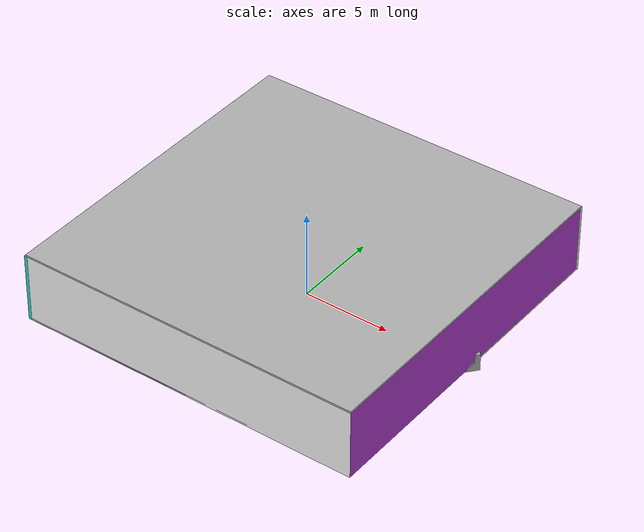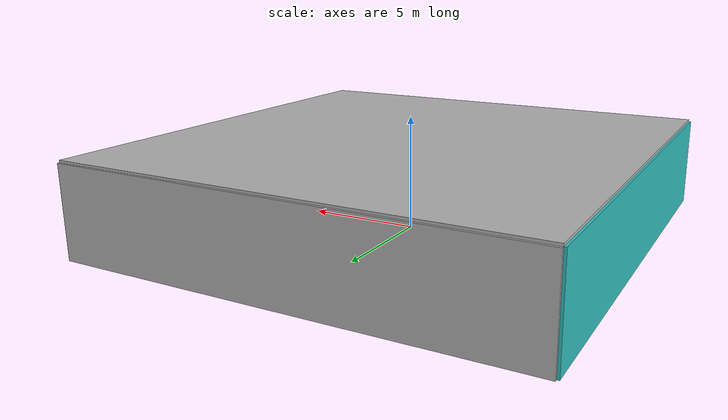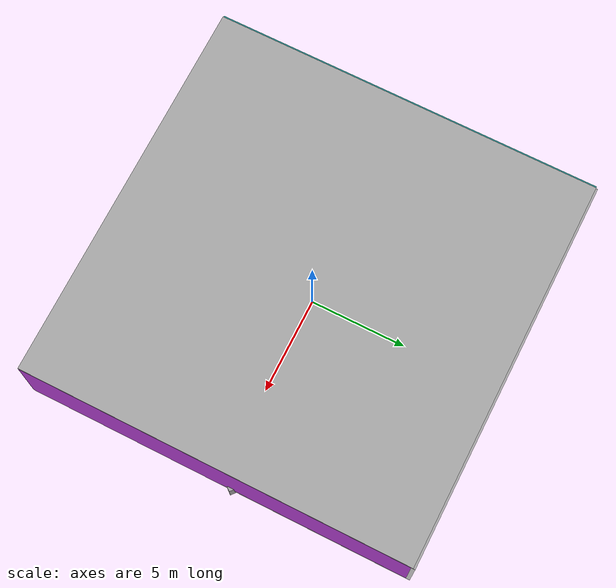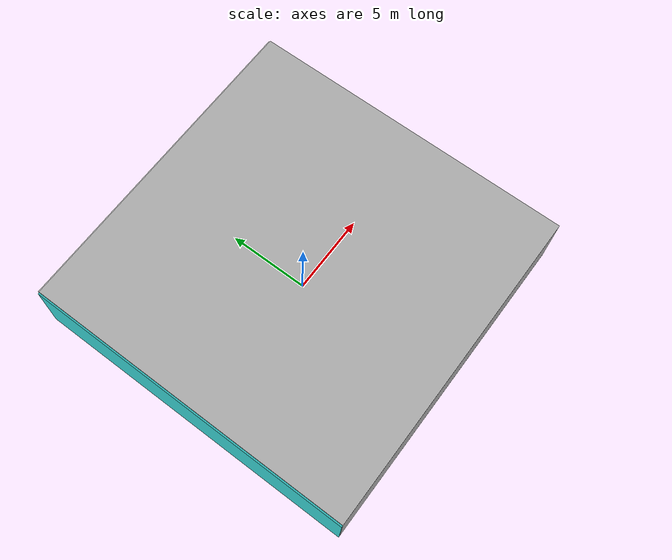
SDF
<sdf version="1.4">
 <world name="default">
  <physics type="ode">
   <max_step_size>0.001</max_step_size>
   <real_time_factor>1</real_time_factor>
   <real_time_update_rate>1000</real_time_update_rate>
   <gravity>0 0 -9.8</gravity>
  </physics>
  <scene><ambient>0.4 0.4 0.4 1</ambient><background>0.7 0.7 0.7 1</background><shadows>1</shadows></scene>
  <model name="Surrounding">
   <static>1</static>
   <link name="Ceiling">
    <collision name="Ceiling_Collision"><geometry><box><size>20 20 0.1</size></box></geometry></collision>
    <visual name="Ceiling_Visual">
     <geometry><box><size>20 20 0.1</size></box></geometry>
     <material>
      <script><uri>file://media/materials/scripts/gazebo.material</uri><name>Gazebo/LightOn</name></script>
     </material>
    </visual>
    <pose>0 0 4.05 0 0 0</pose>
   </link>
   <link name="Wall_South">
    <collision name="Wall_South_Collision">
     <geometry><box><size>20 0 4</size></box></geometry>
     <pose>0 0 2 0 -0 0</pose>
    </collision>
    <visual name="Wall_South_Visual">
     <pose>0 0 2 0 -0 0</pose>
     <geometry><box><size>20 0 4</size></box></geometry>
     <material>
      <script><uri>file://media/materials/scripts/gazebo.material</uri><name>Gazebo/WhiteGlow</name></script>
     </material>
    </visual>
    <velocity_decay><linear>0</linear><angular>0</angular></velocity_decay>
    <pose>0 -10 0 0 -0 0</pose>
   </link>
   <link name="Wall_East">
    <collision name="Wall_21_Collision">
     <geometry><box><size>20 0 4</size></box></geometry>
     <pose>0 0 2 0 -0 0</pose>
    </collision>
    <visual name="Wall_21_Visual">
     <pose>0 0 2 0 -0 0</pose>
     <geometry><box><size>20 0 4</size></box></geometry>
     <material>
      <script><uri>file://media/materials/scripts/gazebo.material</uri><name>Gazebo/PurpleGlow</name></script>
     </material>
    </visual>
    <velocity_decay><linear>0</linear><angular>0</angular></velocity_decay>
    <pose>10 0 0 0 -0 1.5708</pose>
   </link>
   <link name="Wall_North">
    <collision name="Wall_22_Collision">
     <geometry><box><size>20 0.2 4</size></box></geometry>
     <pose>0 0 2 0 -0 0</pose>
    </collision>
    <visual name="Wall_22_Visual">
     <pose>0 0 2 0 -0 0</pose>
     <geometry><box><size>20 0.2 4</size></box></geometry>
     <material>
      <script><uri>file://media/materials/scripts/gazebo.material</uri><name>Gazebo/CloudySky</name></script>
     </material>
    </visual>
    <velocity_decay><linear>0</linear><angular>0</angular></velocity_decay>
    <pose>0 10 0 0 -0 0</pose>
   </link>
   <link name="Wall_West">
    <collision name="Wall_23_Collision">
     <geometry><box><size>20 0.2 4</size></box></geometry>
     <pose>0 0 2 0 -0 0</pose>
    </collision>
    <visual name="Wall_23_Visual">
     <pose>0 0 2 0 -0 0</pose>
     <geometry><box><size>20 0.2 4</size></box></geometry>
     <material>
      <script>
       <uri>file://media/materials/scripts/gazebo.material</uri>
       <name>Gazebo/TurquoiseGlowOutline</name>
      </script>
     </material>
    </visual>
    <velocity_decay><linear>0</linear><angular>0</angular></velocity_decay>
    <pose>-10 0 0 0 0 -1.5708</pose>
   </link>
   <link name="Ground_link">
    <collision name="collision">
     <pose>0 0 .05 0 -0 0</pose>
     <geometry><box><size>20 20 0.1</size></box></geometry>
    </collision>
    <visual name="visual">
     <pose>0 0 .05 0 -0 0</pose>
     <geometry><box><size>20 20 0.1</size></box></geometry>
     <material>
      <script><uri>file://media/materials/scripts/gazebo.material</uri><name>Gazebo/CloudySky</name></script>
     </material>
    </visual>
   </link>
   <static>1</static>
  </model>
  <spherical_coordinates>
   <surface_model>EARTH_WGS84</surface_model>
   <latitude_deg>0</latitude_deg>
   <longitude_deg>0</longitude_deg>
   <elevation>0</elevation>
   <heading_deg>0</heading_deg>
  </spherical_coordinates>
  <light name="lightball_0" type="diffuse">
   <diffuse>0.8 0.8 0.8 1</diffuse>
   <specular>0.2 0.2 0.2 1</specular>
   <attenuation>
    <range>100</range>
    <constant>0.7</constant>
    <linear>0.01</linear>
    <quadratic>0.001</quadratic>
   </attenuation>
   <direction>-0.5 0.1 -0.9</direction>
   <pose>7.56634077778 -9.53930154002 1.495026603 0 0 0</pose>
  </light>
  <light name="lightball_1" type="diffuse">
   <diffuse>0.8 0.8 0.8 1</diffuse>
   <specular>0.2 0.2 0.2 1</specular>
   <attenuation>
    <range>100</range>
    <constant>0.7</constant>
    <linear>0.01</linear>
    <quadratic>0.001</quadratic>
   </attenuation>
   <direction>-0.5 0.1 -0.9</direction>
   <pose>-0.631346756569 -4.55878784354 1.05245372138 0 0 0</pose>
  </light>
  <light name="lightball_2" type="diffuse">
   <diffuse>0.8 0.8 0.8 1</diffuse>
   <specular>0.2 0.2 0.2 1</specular>
   <attenuation>
    <range>100</range>
    <constant>0.7</constant>
    <linear>0.01</linear>
    <quadratic>0.001</quadratic>
   </attenuation>
   <direction>-0.5 0.1 -0.9</direction>
   <pose>4.78251070517 9.08869459844 2.69732444839 0 0 0</pose>
  </light>
  <light name="lightball_3" type="diffuse">
   <diffuse>0.8 0.8 0.8 1</diffuse>
   <specular>0.2 0.2 0.2 1</specular>
   <attenuation>
    <range>100</range>
    <constant>0.7</constant>
    <linear>0.01</linear>
    <quadratic>0.001</quadratic>
   </attenuation>
   <direction>-0.5 0.1 -0.9</direction>
   <pose>-9.61192702446 4.28972593213 3.39270167768 0 0 0</pose>
  </light>
  <light name="lightball_4" type="diffuse">
   <diffuse>0.8 0.8 0.8 1</diffuse>
   <specular>0.2 0.2 0.2 1</specular>
   <attenuation>
    <range>100</range>
    <constant>0.7</constant>
    <linear>0.01</linear>
    <quadratic>0.001</quadratic>
   </attenuation>
   <direction>-0.5 0.1 -0.9</direction>
   <pose>-7.20627061551 -6.60308941693 1.60108269967 0 0 0</pose>
  </light>
  <light name="lightball_5" type="diffuse">
   <diffuse>0.8 0.8 0.8 1</diffuse>
   <specular>0.2 0.2 0.2 1</specular>
   <attenuation>
    <range>100</range>
    <constant>0.7</constant>
    <linear>0.01</linear>
    <quadratic>0.001</quadratic>
   </attenuation>
   <direction>-0.5 0.1 -0.9</direction>
   <pose>-9.88843000921 0.479265680897 2.61928680781 0 0 0</pose>
  </light>
  <light name="lightball_6" type="diffuse">
   <diffuse>0.8 0.8 0.8 1</diffuse>
   <specular>0.2 0.2 0.2 1</specular>
   <attenuation>
    <range>100</range>
    <constant>0.7</constant>
    <linear>0.01</linear>
    <quadratic>0.001</quadratic>
   </attenuation>
   <direction>-0.5 0.1 -0.9</direction>
   <pose>8.17457955188 -8.67518167937 3.40176478838 0 0 0</pose>
  </light>
  <light name="lightball_7" type="diffuse">
   <diffuse>0.8 0.8 0.8 1</diffuse>
   <specular>0.2 0.2 0.2 1</specular>
   <attenuation>
    <range>100</range>
    <constant>0.7</constant>
    <linear>0.01</linear>
    <quadratic>0.001</quadratic>
   </attenuation>
   <direction>-0.5 0.1 -0.9</direction>
   <pose>1.91066519623 9.81128910496 0.538438005136 0 0 0</pose>
  </light>
  <light name="lightball_8" type="diffuse">
   <diffuse>0.8 0.8 0.8 1</diffuse>
   <specular>0.2 0.2 0.2 1</specular>
   <attenuation>
    <range>100</range>
    <constant>0.7</constant>
    <linear>0.01</linear>
    <quadratic>0.001</quadratic>
   </attenuation>
   <direction>-0.5 0.1 -0.9</direction>
   <pose>0.26358623116 2.82653111849 0.917000272317 0 0 0</pose>
  </light>
  <light name="lightball_9" type="diffuse">
   <diffuse>0.8 0.8 0.8 1</diffuse>
   <specular>0.2 0.2 0.2 1</specular>
   <attenuation>
    <range>100</range>
    <constant>0.7</constant>
    <linear>0.01</linear>
    <quadratic>0.001</quadratic>
   </attenuation>
   <direction>-0.5 0.1 -0.9</direction>
   <pose>-4.38239886733 -3.91076034383 3.20302014993 0 0 0</pose>
  </light>
  <light name="lightball_10" type="diffuse">
   <diffuse>0.8 0.8 0.8 1</diffuse>
   <specular>0.2 0.2 0.2 1</specular>
   <attenuation>
    <range>100</range>
    <constant>0.7</constant>
    <linear>0.01</linear>
    <quadratic>0.001</quadratic>
   </attenuation>
   <direction>-0.5 0.1 -0.9</direction>
   <pose>1.50719849272 -0.496907391916 3.29941267701 0 0 0</pose>
  </light>
  <light name="lightball_11" type="diffuse">
   <diffuse>0.8 0.8 0.8 1</diffuse>
   <specular>0.2 0.2 0.2 1</specular>
   <attenuation>
    <range>100</range>
    <constant>0.7</constant>
    <linear>0.01</linear>
    <quadratic>0.001</quadratic>
   </attenuation>
   <direction>-0.5 0.1 -0.9</direction>
   <pose>-6.03966292167 -0.949830652907 1.43688109407 0 0 0</pose>
  </light>
  <include><uri>model://table</uri><pose>-5.35296332135 4.46198049446 0 0 0 0.947785499934</pose></include>
  <include>
   <uri>model://construction_cone</uri>
   <pose>-2.50174663651 -4.0086643818 0 0 0 0.636291077419</pose>
  </include>
  <include>
   <uri>model://robocup_3Dsim_goal</uri>
   <pose>0.728075670043 -0.864632247791 0 0 0 1.06523103372</pose>
  </include>
  <include><uri>model://cabinet</uri><pose>0.700155602094 4.09988610992 0 0 0 0.840267828111</pose></include>
  <include>
   <uri>model://textured_shapes</uri>
   <pose>8.32779405544 1.66416139239 0 0 0 0.878883447464</pose>
  </include>
 </world>
</sdf>

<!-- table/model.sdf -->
<sdf version="1.5">
  <model name="table">
    <static>true</static>
    <link name="link">
      <collision name="surface">
        <pose>0 0 1.0 0 0 0</pose>
        <geometry>
          <box>
            <size>1.5 0.8 0.03</size>
          </box>
        </geometry>
        <surface>
          <friction>
            <ode>
              <mu>0.6</mu>
              <mu2>0.6</mu2>
            </ode>
          </friction>
        </surface>
      </collision>
      <visual name="visual1">
        <pose>0 0 1.0 0 0 0</pose>
        <geometry>
          <box>
            <size>1.5 0.8 0.03</size>
          </box>
        </geometry>
        <material>
          <script>
            <uri>model://media/materials/scripts/gazebo.material</uri>
            <name>Gazebo/Wood</name>
          </script>
        </material>
      </visual>
      <collision name="front_left_leg">
        <pose>0.68 0.38 0.5 0 0 0</pose>
        <geometry>
          <cylinder>
            <radius>0.02</radius>
            <length>1.0</length>
          </cylinder>
        </geometry>
      </collision>
      <visual name="front_left_leg">
        <pose>0.68 0.38 0.5 0 0 0</pose>
        <geometry>
          <cylinder>
            <radius>0.02</radius>
            <length>1.0</length>
          </cylinder>
        </geometry>
        <material>
          <script>
            <uri>model://media/materials/scripts/gazebo.material</uri>
            <name>Gazebo/Grey</name>
          </script>
        </material>
      </visual>
      <collision name="front_right_leg">
        <pose>0.68 -0.38 0.5 0 0 0</pose>
        <geometry>
          <cylinder>
            <radius>0.02</radius>
            <length>1.0</length>
          </cylinder>
        </geometry>
      </collision>
      <visual name="front_right_leg">
        <pose>0.68 -0.38 0.5 0 0 0</pose>
        <geometry>
          <cylinder>
            <radius>0.02</radius>
            <length>1.0</length>
          </cylinder>
        </geometry>
        <material>
          <script>
            <uri>model://media/materials/scripts/gazebo.material</uri>
            <name>Gazebo/Grey</name>
          </script>
        </material>
      </visual>
      <collision name="back_right_leg">
        <pose>-0.68 -0.38 0.5 0 0 0</pose>
        <geometry>
          <cylinder>
            <radius>0.02</radius>
            <length>1.0</length>
          </cylinder>
        </geometry>
      </collision>
      <visual name="back_right_leg">
        <pose>-0.68 -0.38 0.5 0 0 0</pose>
        <geometry>
          <cylinder>
            <radius>0.02</radius>
            <length>1.0</length>
          </cylinder>
        </geometry>
        <material>
          <script>
            <uri>model://media/materials/scripts/gazebo.material</uri>
            <name>Gazebo/Grey</name>
          </script>
        </material>
      </visual>
      <collision name="back_left_leg">
        <pose>-0.68 0.38 0.5 0 0 0</pose>
        <geometry>
          <cylinder>
            <radius>0.02</radius>
            <length>1.0</length>
          </cylinder>
        </geometry>
      </collision>
      <visual name="back_left_leg">
        <pose>-0.68 0.38 0.5 0 0 0</pose>
        <geometry>
          <cylinder>
            <radius>0.02</radius>
            <length>1.0</length>
          </cylinder>
        </geometry>
        <material>
          <script>
            <uri>model://media/materials/scripts/gazebo.material</uri>
            <name>Gazebo/Grey</name>
          </script>
        </material>
      </visual>
    </link>
  </model>
</sdf>

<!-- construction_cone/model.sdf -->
<sdf version="1.5">
  <model name="Construction Cone">
    <link name="link">
      <collision name="collision">
        <geometry>
          <mesh>
            <scale>10 10 10</scale>
            <uri>file://isr-testbed/construction_cone/meshes/construction_cone.dae</uri>
          </mesh>
        </geometry>
      </collision>
      <visual name="visual">
        <geometry>
          <mesh>
            <scale>10 10 10</scale>
            <uri>file://isr-testbed/construction_cone/meshes/construction_cone.dae</uri>
          </mesh>
        </geometry>
      </visual>
    </link>
  </model>
</sdf>

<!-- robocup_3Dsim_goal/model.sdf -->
<sdf version="1.5">
  <model name="robocup_3d_goal">
    <static>true</static>
    <link name="left_post">
      <pose>0 1.05 0.45 0 0 0</pose>
      <collision name="collision">
        <geometry>
          <cylinder>
            <radius>0.05</radius>
            <length>0.9</length>
          </cylinder>
        </geometry>
      </collision>
      <visual name="visual">
        <geometry>
          <cylinder>
            <radius>0.05</radius>
            <length>0.9</length>
          </cylinder>
        </geometry>
        <material>
          <script>
            <uri>file://media/materials/scripts/gazebo.material</uri>
            <name>Gazebo/ZincYellow</name>
          </script>
        </material>
      </visual>
    </link>
    <link name="left_support_horiz_lower">
      <pose>0.30 1.05 0.01 0 0 0</pose>
      <collision name="collision">
        <geometry>
          <box>
            <size>0.50 0.02 0.02</size>
          </box>
        </geometry>
      </collision>
      <visual name="visual">
        <geometry>
          <box>
            <size>0.50 0.02 0.02</size>
          </box>
        </geometry>
        <material>
          <script>
            <uri>file://media/materials/scripts/gazebo.material</uri>
            <name>Gazebo/White</name>
          </script>
        </material>
      </visual>
    </link>
    <link name="left_support_horiz_upper">
      <pose>0.30 1.05 0.79 0 0 0</pose>
      <collision name="collision">
        <geometry>
          <box>
            <size>0.50 0.02 0.02</size>
          </box>
        </geometry>
      </collision>
      <visual name="visual">
        <geometry>
          <box>
            <size>0.50 0.02 0.02</size>
          </box>
        </geometry>
        <material>
          <script>
            <uri>file://media/materials/scripts/gazebo.material</uri>
            <name>Gazebo/White</name>
          </script>
        </material>
      </visual>
    </link>
    <link name="left_support_vertical">
      <pose>0.56 1.05 0.4 0 1.5708 0</pose>
      <collision name="collision">
        <geometry>
          <box>
            <size>0.80 0.02 0.02</size>
          </box>
        </geometry>
      </collision>
      <visual name="visual">
        <geometry>
          <box>
            <size>0.80 0.02 0.02</size>
          </box>
        </geometry>
        <material>
          <script>
            <uri>file://media/materials/scripts/gazebo.material</uri>
            <name>Gazebo/White</name>
          </script>
        </material>
      </visual>
    </link>
    <link name="right_support_horiz_lower">
      <pose>0.30 -1.05 0.01 0 0 0</pose>
      <collision name="collision">
        <geometry>
          <box>
            <size>0.50 0.02 0.02</size>
          </box>
        </geometry>
      </collision>
      <visual name="visual">
        <geometry>
          <box>
            <size>0.50 0.02 0.02</size>
          </box>
        </geometry>
        <material>
          <script>
            <uri>file://media/materials/scripts/gazebo.material</uri>
            <name>Gazebo/White</name>
          </script>
        </material>
      </visual>
    </link>
    <link name="right_support_horiz_upper">
      <pose>0.30 -1.05 0.79 0 0 0</pose>
      <collision name="collision">
        <geometry>
          <box>
            <size>0.50 0.02 0.02</size>
          </box>
        </geometry>
      </collision>
      <visual name="visual">
        <geometry>
          <box>
            <size>0.50 0.02 0.02</size>
          </box>
        </geometry>
        <material>
          <script>
            <uri>file://media/materials/scripts/gazebo.material</uri>
            <name>Gazebo/White</name>
          </script>
        </material>
      </visual>
    </link>
    <link name="right_support_vertical">
      <pose>0.56 -1.05 0.4 0 1.5708 0</pose>
      <collision name="collision">
        <geometry>
          <box>
            <size>0.80 0.02 0.02</size>
          </box>
        </geometry>
      </collision>
      <visual name="visual">
        <geometry>
          <box>
            <size>0.80 0.02 0.02</size>
          </box>
        </geometry>
        <material>
          <script>
            <uri>file://media/materials/scripts/gazebo.material</uri>
            <name>Gazebo/White</name>
          </script>
        </material>
      </visual>
    </link>
    <link name="center_support_horiz_lower">
      <pose>0.56 0 0.01 0 1.5708 0</pose>
      <collision name="collision">
        <geometry>
          <box>
            <size>0.02 2.08 0.02</size>
          </box>
        </geometry>
      </collision>
      <visual name="visual">
        <geometry>
          <box>
            <size>0.02 2.08 0.02</size>
          </box>
        </geometry>
        <material>
          <script>
            <uri>file://media/materials/scripts/gazebo.material</uri>
            <name>Gazebo/White</name>
          </script>
        </material>
      </visual>
    </link>
    <link name="center_support_horiz_upper">
      <pose>0.56 0 0.79 0 1.5708 0</pose>
      <collision name="collision">
        <geometry>
          <box>
            <size>0.02 2.08 0.02</size>
          </box>
        </geometry>
      </collision>
      <visual name="visual">
        <geometry>
          <box>
            <size>0.02 2.08 0.02</size>
          </box>
        </geometry>
        <material>
          <script>
            <uri>file://media/materials/scripts/gazebo.material</uri>
            <name>Gazebo/White</name>
          </script>
        </material>
      </visual>
    </link>
    <link name="right_post">
      <pose>0 -1.05 0.45 0 0 0</pose>
      <collision name="collision">
        <geometry>
          <cylinder>
            <radius>0.05</radius>
            <length>0.9</length>
          </cylinder>
        </geometry>
      </collision>
      <visual name="visual">
        <geometry>
          <cylinder>
            <radius>0.05</radius>
            <length>0.9</length>
          </cylinder>
        </geometry>
        <material>
          <script>
            <uri>file://media/materials/scripts/gazebo.material</uri>
            <name>Gazebo/ZincYellow</name>
          </script>
        </material>
      </visual>
    </link>
    <link name="crossbar">
      <pose>0 0 0.85 1.57 1.57 0</pose>
      <collision name="collision">
        <geometry>
          <cylinder>
            <radius>0.05</radius>
            <length>2.0</length>
          </cylinder>
        </geometry>
      </collision>
      <visual name="visual">
        <geometry>
          <cylinder>
            <radius>0.05</radius>
            <length>2.0</length>
          </cylinder>
        </geometry>
        <material>
          <script>
            <uri>file://media/materials/scripts/gazebo.material</uri>
            <name>Gazebo/ZincYellow</name>
          </script>
        </material>
      </visual>
    </link>
    <link name="center_net">
      <pose>0.56 0 0.40 0 0 0</pose>
      <collision name="collision">
        <geometry>
          <box>
            <size>0.01 2.1 0.80</size>
          </box>
        </geometry>
      </collision>
      <visual name="visual">
        <geometry>
          <box>
            <size>0.01 2.1 0.80</size>
          </box>
        </geometry>
        <material>
          <script>
            <uri>model://../model_source/models/robocup09_spl_field/materials/scripts/</uri>
            <uri>model://../model_source/models/robocup09_spl_field/materials/textures/</uri>
            <name>RoboCup/Net</name>
          </script>
        </material>
      </visual>
    </link>
    <link name="left_net">
      <pose>0.30 1.05 0.40 0 0 0</pose>
      <collision name="collision">
        <geometry>
          <box>
            <size>0.50 0.01 0.76</size>
          </box>
        </geometry>
      </collision>
      <visual name="visual">
        <geometry>
          <box>
            <size>0.50 0.01 0.76</size>
          </box>
        </geometry>
        <material>
          <script>
            <uri>model://../model_source/models/robocup09_spl_field/materials/scripts/</uri>
            <uri>model://../model_source/models/robocup09_spl_field/materials/textures/</uri>
            <name>RoboCup/Net</name>
          </script>
        </material>
      </visual>
    </link>
    <link name="right_net">
      <pose>0.30 -1.05 0.40 0 0 0</pose>
      <collision name="collision">
        <geometry>
          <box>
            <size>0.50 0.01 0.76</size>
          </box>
        </geometry>
      </collision>
      <visual name="visual">
        <geometry>
          <box>
            <size>0.50 0.01 0.76</size>
          </box>
        </geometry>
        <material>
          <script>
            <uri>model://../model_source/models/robocup09_spl_field/materials/scripts/</uri>
            <uri>model://../model_source/models/robocup09_spl_field/materials/textures/</uri>
            <name>RoboCup/Net</name>
          </script>
        </material>
      </visual>
    </link>
  </model>
</sdf>

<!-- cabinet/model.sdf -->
<sdf version="1.5">
  <model name="cabinet">
    <static>true</static>
    <link name="cabinet_bottom_plate">
      <inertial>
        <pose>0 0 -1 0 0 0</pose>
        <inertia>
          <ixx>2.050000</ixx>
          <ixy>0</ixy>
          <ixz>0</ixz>
          <iyy>2.050000</iyy>
          <iyz>0</iyz>
          <izz>2.050000</izz>
        </inertia>
        <mass>25.000000</mass>
      </inertial>
      <collision name="cabinet_bottom_plate_geom">
        <pose>0 0 0.010000 0 0 0</pose>
        <geometry>
          <box>
            <size>0.450000 0.450000 0.020000</size>
          </box>
        </geometry>
      </collision>
      <visual name="cabinet_bottom_plate_geom_visual">
        <pose>0 0 0.010000 0 0 0</pose>
        <geometry>
          <box>
            <size>0.450000 0.450000 0.020000</size>
          </box>
        </geometry>
        <material>
          <script>
            <uri>model://media/materials/scripts/gazebo.material</uri>
            <name>Gazebo/Wood</name>
          </script>
        </material>
      </visual>
      <collision name="cabinet_bottom_plate_geom_cabinet_back_plate">
        <pose>0.235000 0 0.510000 0 0 0</pose>
        <geometry>
          <box>
            <size>0.020000 0.450000 1.020000</size>
          </box>
        </geometry>
      </collision>
      <visual name="cabinet_bottom_plate_geom_cabinet_back_plate_visual">
        <pose>0.235000 0 0.510000 0 0 0</pose>
        <geometry>
          <box>
            <size>0.020000 0.450000 1.020000</size>
          </box>
        </geometry>
        <material>
          <script>
            <uri>model://media/materials/scripts/gazebo.material</uri>
            <name>Gazebo/Wood</name>
          </script>
        </material>
      </visual>
      <collision name="cabinet_bottom_plate_geom_cabinet_left_plate">
        <pose>0 0.235000 0.510000 0 0 0</pose>
        <geometry>
          <box>
            <size>0.450000 0.020000 1.020000</size>
          </box>
        </geometry>
      </collision>
      <visual name="cabinet_bottom_plate_geom_cabinet_left_plate_visual">
        <pose>0 0.235000 0.510000 0 0 0</pose>
        <geometry>
          <box>
            <size>0.450000 0.020000 1.020000</size>
          </box>
        </geometry>
        <material>
          <script>
            <uri>model://media/materials/scripts/gazebo.material</uri>
            <name>Gazebo/Wood</name>
          </script>
        </material>
      </visual>
      <collision name="cabinet_bottom_plate_geom_cabinet_middle_plate">
        <pose>0 0 0.510000 0 0 0</pose>
        <geometry>
          <box>
            <size>0.450000 0.450000 0.020000</size>
          </box>
        </geometry>
      </collision>
      <visual name="cabinet_bottom_plate_geom_cabinet_middle_plate_visual">
        <pose>0 0 0.510000 0 0 0</pose>
        <geometry>
          <box>
            <size>0.450000 0.450000 0.020000</size>
          </box>
        </geometry>
        <material>
          <script>
            <uri>model://media/materials/scripts/gazebo.material</uri>
            <name>Gazebo/Wood</name>
          </script>
        </material>
      </visual>
      <collision name="cabinet_bottom_plate_geom_cabinet_right_plate">
        <pose>0 -0.235000 0.510000 0 0 0</pose>
        <geometry>
          <box>
            <size>0.450000 0.020000 1.020000</size>
          </box>
        </geometry>
      </collision>
      <visual name="cabinet_bottom_plate_geom_cabinet_right_plate_visual">
        <pose>0 -0.235000 0.510000 0 0 0</pose>
        <geometry>
          <box>
            <size>0.450000 0.020000 1.020000</size>
          </box>
        </geometry>
        <material>
          <script>
            <uri>model://media/materials/scripts/gazebo.material</uri>
            <name>Gazebo/Wood</name>
          </script>
        </material>
      </visual>
      <collision name="cabinet_bottom_plate_geom_cabinet_top_plate">
        <pose>0 0 1.010000 0 0 0</pose>
        <geometry>
          <box>
            <size>0.450000 0.450000 0.020000</size>
          </box>
        </geometry>
      </collision>
      <visual name="cabinet_bottom_plate_geom_cabinet_top_plate_visual">
        <pose>0 0 1.010000 0 0 0</pose>
        <geometry>
          <box>
            <size>0.450000 0.450000 0.020000</size>
          </box>
        </geometry>
        <material>
          <script>
            <uri>model://media/materials/scripts/gazebo.material</uri>
            <name>Gazebo/Wood</name>
          </script>
        </material>
      </visual>
    </link>
  </model>
</sdf>

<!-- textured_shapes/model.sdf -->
<sdf version="1.6">
  <model name="textured_shapes">
    <pose>0 0 0.5 0 0 0</pose>
    <link name="box">
      <pose>0 -1.5 0 0 0 0</pose>
      <collision name="collision">
        <geometry>
          <box>
            <size>1 1 1</size>
          </box>
        </geometry>
      </collision>
      <visual name="visual">
        <geometry>
          <box>
            <size>1 1 1</size>
          </box>
        </geometry>
        <material>
          <script>
            <uri>model://../model_source/models/textured_shapes/materials/scripts</uri>
            <uri>model://../model_source/models/textured_shapes/materials/textures</uri>
            <name>TexturedShape/Squares</name>
          </script>
        </material>
      </visual>
    </link>
    <link name="sphere">
      <collision name="collision">
        <geometry>
          <sphere>
            <radius>0.5</radius>
          </sphere>
        </geometry>
      </collision>
      <visual name="visual">
        <geometry>
          <sphere>
            <radius>0.5</radius>
          </sphere>
        </geometry>
        <material>
          <script>
            <uri>model://../model_source/models/textured_shapes/materials/scripts</uri>
            <uri>model://../model_source/models/textured_shapes/materials/textures</uri>
            <name>TexturedShape/Squares</name>
          </script>
        </material>
      </visual>
    </link>
    <link name="cylinder">
      <pose>0 1.5 0 0 0 0</pose>
      <collision name="collision">
        <geometry>
          <cylinder>
            <radius>0.5</radius>
            <length>1</length>
          </cylinder>
        </geometry>
      </collision>
      <visual name="visual">
        <geometry>
          <cylinder>
            <radius>0.5</radius>
            <length>1</length>
          </cylinder>
        </geometry>
        <material>
          <script>
            <uri>model://../model_source/models/textured_shapes/materials/scripts</uri>
            <uri>model://../model_source/models/textured_shapes/materials/textures</uri>
            <name>TexturedShape/Squares</name>
          </script>
        </material>
      </visual>
    </link>
  </model>
</sdf>
